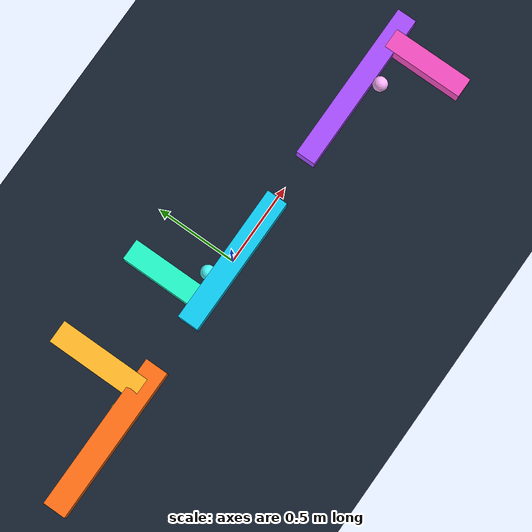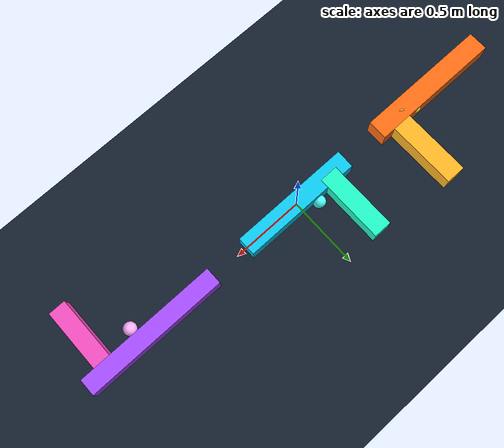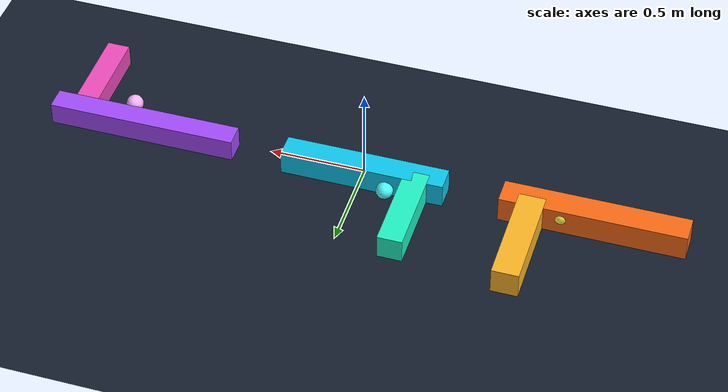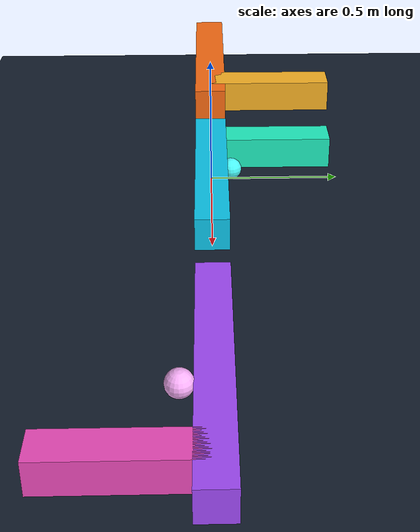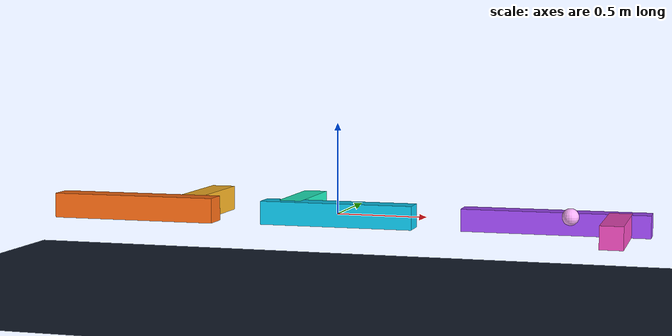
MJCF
<mujoco model="offcenter balance workshop">
  <compiler angle="radian" autolimits="true"/>
  <option integrator="implicitfast" timestep="0.002" gravity="0 0 0">
    <flag contact="disable"/>
  </option>
  <visual><headlight diffuse="0.9 0.9 0.9" ambient="0.45 0.45 0.45" specular="0.25 0.25 0.25"/></visual>
  <worldbody>
    <geom name="floor" type="plane" pos="0 0 -0.45" size="4 4 .1" rgba=".08 .12 .18 1" contype="0" conaffinity="0"/>
    <body name="amber_tool" pos="-1.2 0 0">
      <freejoint/>
      <inertial pos=".16 .035 .015" mass="1.1" diaginertia=".09 .14 .18" quat=".9659258 0 0 .258819"/>
      <geom type="box" pos="0 0 0" size=".48 .07 .07" rgba="1 .43 .08 1" mass="0"/>
      <geom type="box" pos=".32 .28 0" size=".07 .28 .07" rgba="1 .72 .15 1" mass="0"/>
      <site name="amber_com" pos=".16 .035 .015" size=".045" rgba="1 .95 .25 1"/>
    </body>
    <body name="cyan_tool" pos="0 0 0">
      <freejoint/>
      <inertial pos="-.13 .08 -.025" mass=".9" diaginertia=".075 .12 .16" quat=".9238795 .3826834 0 0"/>
      <geom type="box" pos="0 0 0" size=".43 .065 .065" rgba=".05 .8 .95 1" mass="0"/>
      <geom type="box" pos="-.28 .25 0" size=".065 .25 .065" rgba=".13 .97 .78 1" mass="0"/>
      <site name="cyan_com" pos="-.13 .08 -.025" size=".045" rgba=".3 1 1 1"/>
    </body>
    <body name="violet_tool" pos="1.2 0 0">
      <freejoint/>
      <inertial pos=".09 -.10 .045" mass="1.25" diaginertia=".11 .17 .21" quat=".9659258 0 .258819 0"/>
      <geom type="box" pos="0 0 0" size=".5 .06 .06" rgba=".65 .3 1 1" mass="0"/>
      <geom type="box" pos=".34 -.25 0" size=".06 .25 .06" rgba=".95 .3 .75 1" mass="0"/>
      <site name="violet_com" pos=".09 -.10 .045" size=".045" rgba="1 .7 1 1"/>
    </body>
  </worldbody>
</mujoco>
